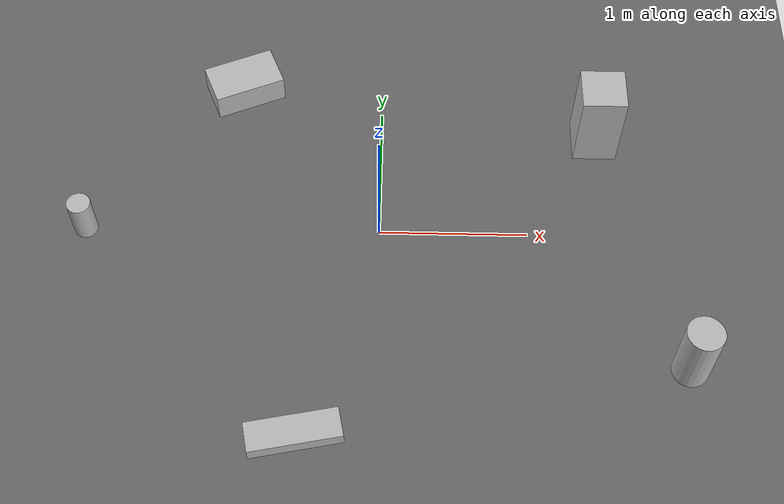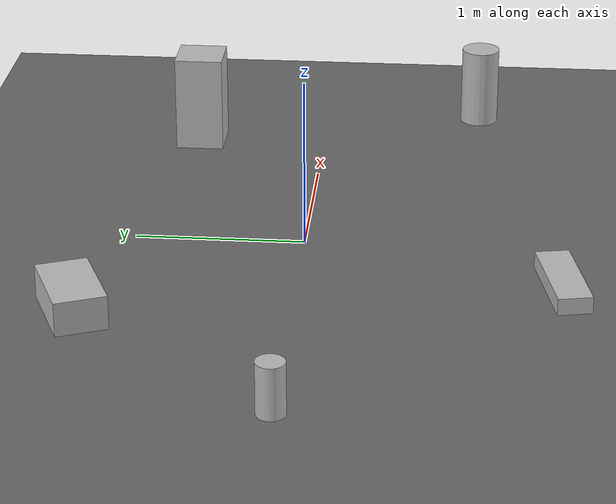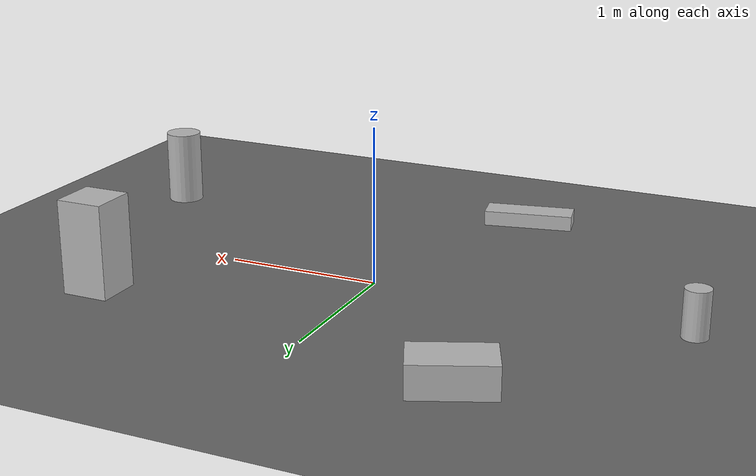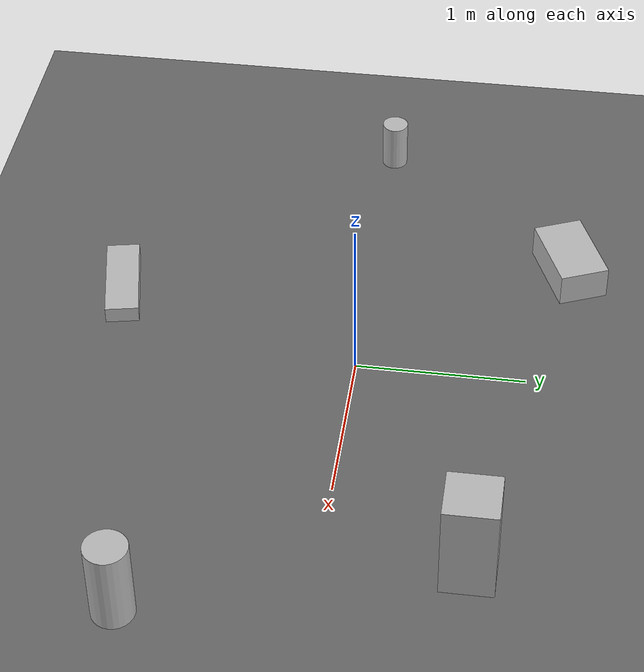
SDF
<?xml version="1.0" ?>
<sdf version="1.8">
  <world name="plain_world">
    <physics name="1ms" type="ignored">
      <max_step_size>0.001</max_step_size>
      <real_time_factor>1.0</real_time_factor>
   </physics>
    <plugin filename="libgz-sim-physics-system.so" name="gz::sim::systems::Physics"/>
    <plugin filename="gz-sim-sensors-system" name="gz::sim::systems::Sensors">
      <render_engine>ogre2</render_engine>
   </plugin>
    <plugin filename="gz-sim-user-commands-system" name="gz::sim::systems::UserCommands"/>
    <plugin filename="libgz-sim-scene-broadcaster-system.so" name="gz::sim::systems::SceneBroadcaster"/>
    <plugin filename="libgz-sim-contact-system.so" name="gz::sim::systems::Contact"/>
    <scene>
      <ambient>0.5 0.5 0.5 1</ambient>
      <sky/>
   </scene>

    <light type="directional" name="sun">
      <cast_shadows>true</cast_shadows>
      <pose>0 0 10 0 0 0</pose>
      <diffuse>0.8 0.8 0.8 1</diffuse>
      <specular>0.2 0.2 0.2 1</specular>
      <attenuation>
        <range>1000</range>
        <constant>0.9</constant>
        <linear>0.01</linear>
        <quadratic>0.001</quadratic>
     </attenuation>
      <direction>-0.5 0.1 -0.9</direction>
   </light>

    <!-- Ground plane (friction tuned to match Spooder tibia tip mu1=2.5, mu2=2.5) -->
    <model name="ground">
      <static>true</static>
      <link name="link">
        <collision name="collision">
          <geometry>
            <plane>
              <normal>0 0 1</normal>
              <size>100 100</size>
           </plane>
         </geometry>
          <surface>
            <friction>
              <ode>
                <mu>2.5</mu>
                <mu2>2.5</mu2>
             </ode>
           </friction>
         </surface>
       </collision>
        <visual name="visual">
          <geometry>
            <plane>
              <normal>0 0 1</normal>
              <size>100 100</size>
           </plane>
         </geometry>
          <material>
            <ambient>0.3 0.3 0.3 1</ambient>
            <diffuse>0.4 0.4 0.4 1</diffuse>
         </material>
       </visual>
     </link>
   </model>

    <!-- Obstacle 1: tall box -->
    <model name="tall_box">
      <static>true</static>
      <pose>1.5 0.8 0.3 0 0 0</pose>
      <link name="link">
        <visual name="visual">
          <geometry>
            <box>
              <size>0.3 0.3 0.6</size>
           </box>
         </geometry>
       </visual>
        <collision name="collision">
          <geometry>
            <box>
              <size>0.3 0.3 0.6</size>
           </box>
         </geometry>
          <surface>
            <friction>
              <ode>
                <mu>1.0</mu>
                <mu2>1.0</mu2>
             </ode>
           </friction>
         </surface>
       </collision>
     </link>
   </model>

    <!-- Obstacle 2: short wide box -->
    <model name="short_box">
      <static>true</static>
      <pose>-1.0 1.2 0.1 0 0 0.4</pose>
      <link name="link">
        <visual name="visual">
          <geometry>
            <box>
              <size>0.5 0.3 0.2</size>
           </box>
         </geometry>
       </visual>
        <collision name="collision">
          <geometry>
            <box>
              <size>0.5 0.3 0.2</size>
           </box>
         </geometry>
          <surface>
            <friction>
              <ode>
                <mu>1.0</mu>
                <mu2>1.0</mu2>
             </ode>
           </friction>
         </surface>
       </collision>
     </link>
   </model>

    <!-- Obstacle 3: cylinder -->
    <model name="pillar">
      <static>true</static>
      <pose>2.0 -1.0 0.25 0 0 0</pose>
      <link name="link">
        <visual name="visual">
          <geometry>
            <cylinder>
              <radius>0.12</radius>
              <length>0.5</length>
           </cylinder>
         </geometry>
       </visual>
        <collision name="collision">
          <geometry>
            <cylinder>
              <radius>0.12</radius>
              <length>0.5</length>
           </cylinder>
         </geometry>
          <surface>
            <friction>
              <ode>
                <mu>1.0</mu>
                <mu2>1.0</mu2>
             </ode>
           </friction>
         </surface>
       </collision>
     </link>
   </model>

    <!-- Obstacle 4: low step -->
    <model name="step">
      <static>true</static>
      <pose>-0.5 -1.5 0.05 0 0 0.2</pose>
      <link name="link">
        <visual name="visual">
          <geometry>
            <box>
              <size>0.6 0.2 0.1</size>
           </box>
         </geometry>
       </visual>
        <collision name="collision">
          <geometry>
            <box>
              <size>0.6 0.2 0.1</size>
           </box>
         </geometry>
          <surface>
            <friction>
              <ode>
                <mu>1.0</mu>
                <mu2>1.0</mu2>
             </ode>
           </friction>
         </surface>
       </collision>
     </link>
   </model>

    <!-- Obstacle 5: bollard -->
    <model name="bollard">
      <static>true</static>
      <pose>-2.0 0.0 0.15 0 0 0</pose>
      <link name="link">
        <visual name="visual">
          <geometry>
            <cylinder>
              <radius>0.08</radius>
              <length>0.3</length>
           </cylinder>
         </geometry>
       </visual>
        <collision name="collision">
          <geometry>
            <cylinder>
              <radius>0.08</radius>
              <length>0.3</length>
           </cylinder>
         </geometry>
          <surface>
            <friction>
              <ode>
                <mu>1.0</mu>
                <mu2>1.0</mu2>
             </ode>
           </friction>
         </surface>
       </collision>
     </link>
   </model>
 </world>
</sdf>
